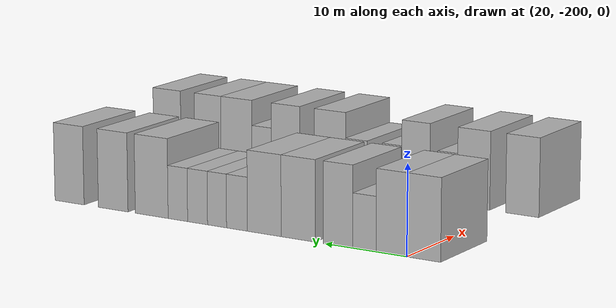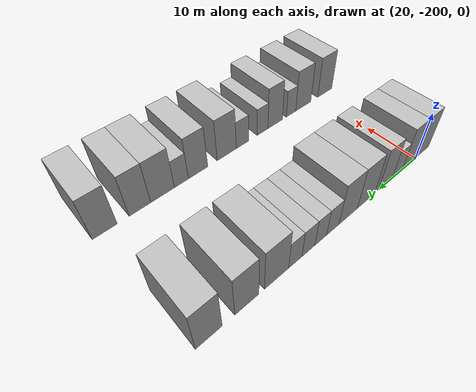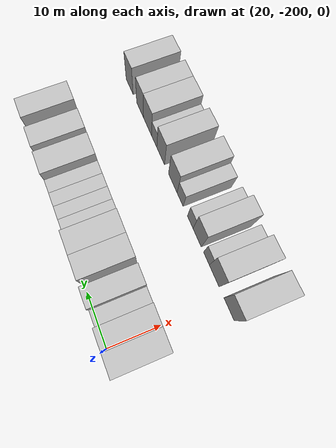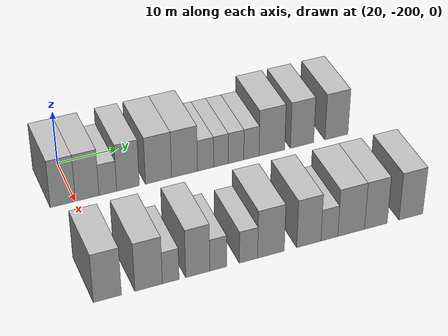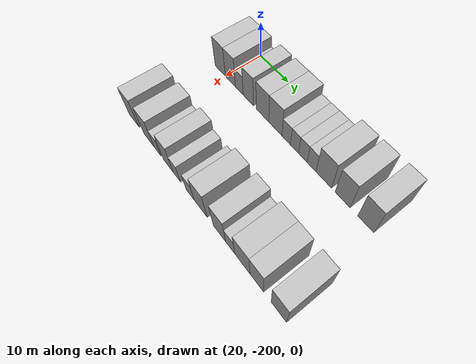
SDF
<sdf version="1.6">
 <world name="default">
  <model name="building_1">
   <static>1</static>
   <pose>25.0000 -202.0031 0 0.000000 0.000000 0.000000</pose>
   <link name="link">
    <pose>0 0 4.50 0 0 0</pose>
    <collision name="collision"><geometry><box><size>10.0000 3.9939 9.0000</size></box></geometry></collision>
    <visual name="visual">
     <cast_shadows>0</cast_shadows>
     <geometry><box><size>10.0000 3.9939 9.0000</size></box></geometry>
     <material>
      <script>
       <uri>model://HANNAS_wall/materials/scripts</uri>
       <uri>model://HANNAS_wall/materials/textures</uri>
       <name>vrc/HANNAS_wall</name>
      </script>
     </material>
    </visual>
   </link>
  </model>
  <model name="building_2">
   <static>1</static>
   <pose>25.0000 -198.1215 0 0.000000 0.000000 0.000000</pose>
   <link name="link">
    <pose>0 0 4.50 0 0 0</pose>
    <collision name="collision"><geometry><box><size>10.0000 3.7692 9.0000</size></box></geometry></collision>
    <visual name="visual">
     <cast_shadows>0</cast_shadows>
     <geometry><box><size>10.0000 3.7692 9.0000</size></box></geometry>
     <material>
      <script>
       <uri>model://HANNAS_wall/materials/scripts</uri>
       <uri>model://HANNAS_wall/materials/textures</uri>
       <name>vrc/HANNAS_wall</name>
      </script>
     </material>
    </visual>
   </link>
  </model>
  <model name="building_3">
   <static>1</static>
   <pose>25.0000 -194.8044 0 0.000000 0.000000 0.000000</pose>
   <link name="link">
    <pose>0 0 3.00 0 0 0</pose>
    <collision name="collision"><geometry><box><size>10.0000 2.8649 6.0000</size></box></geometry></collision>
    <visual name="visual">
     <cast_shadows>0</cast_shadows>
     <geometry><box><size>10.0000 2.8649 6.0000</size></box></geometry>
     <material>
      <script>
       <uri>model://HANNAS_wall/materials/scripts</uri>
       <uri>model://HANNAS_wall/materials/textures</uri>
       <name>vrc/HANNAS_wall</name>
      </script>
     </material>
    </visual>
   </link>
  </model>
  <model name="building_4">
   <static>1</static>
   <pose>25.0000 -191.5345 0 0.000000 0.000000 0.000000</pose>
   <link name="link">
    <pose>0 0 4.50 0 0 0</pose>
    <collision name="collision"><geometry><box><size>10.0000 3.6749 9.0000</size></box></geometry></collision>
    <visual name="visual">
     <cast_shadows>0</cast_shadows>
     <geometry><box><size>10.0000 3.6749 9.0000</size></box></geometry>
     <material>
      <script>
       <uri>model://HANNAS_wall/materials/scripts</uri>
       <uri>model://HANNAS_wall/materials/textures</uri>
       <name>vrc/HANNAS_wall</name>
      </script>
     </material>
    </visual>
   </link>
  </model>
  <model name="building_5">
   <static>1</static>
   <pose>25.0000 -186.5516 0 0.000000 0.000000 0.000000</pose>
   <link name="link">
    <pose>0 0 4.50 0 0 0</pose>
    <collision name="collision"><geometry><box><size>10.0000 4.2910 9.0000</size></box></geometry></collision>
    <visual name="visual">
     <cast_shadows>0</cast_shadows>
     <geometry><box><size>10.0000 4.2910 9.0000</size></box></geometry>
     <material>
      <script>
       <uri>model://HANNAS_wall/materials/scripts</uri>
       <uri>model://HANNAS_wall/materials/textures</uri>
       <name>vrc/HANNAS_wall</name>
      </script>
     </material>
    </visual>
   </link>
  </model>
  <model name="building_6">
   <static>1</static>
   <pose>25.0000 -182.2381 0 0.000000 0.000000 0.000000</pose>
   <link name="link">
    <pose>0 0 4.50 0 0 0</pose>
    <collision name="collision"><geometry><box><size>10.0000 4.3360 9.0000</size></box></geometry></collision>
    <visual name="visual">
     <cast_shadows>0</cast_shadows>
     <geometry><box><size>10.0000 4.3360 9.0000</size></box></geometry>
     <material>
      <script>
       <uri>model://HANNAS_wall/materials/scripts</uri>
       <uri>model://HANNAS_wall/materials/textures</uri>
       <name>vrc/HANNAS_wall</name>
      </script>
     </material>
    </visual>
   </link>
  </model>
  <model name="building_7">
   <static>1</static>
   <pose>25.0000 -178.7124 0 0.000000 0.000000 0.000000</pose>
   <link name="link">
    <pose>0 0 3.00 0 0 0</pose>
    <collision name="collision"><geometry><box><size>10.0000 2.7153 6.0000</size></box></geometry></collision>
    <visual name="visual">
     <cast_shadows>0</cast_shadows>
     <geometry><box><size>10.0000 2.7153 6.0000</size></box></geometry>
     <material>
      <script>
       <uri>model://HANNAS_wall/materials/scripts</uri>
       <uri>model://HANNAS_wall/materials/textures</uri>
       <name>vrc/HANNAS_wall</name>
      </script>
     </material>
    </visual>
   </link>
  </model>
  <model name="building_8">
   <static>1</static>
   <pose>25.0000 -176.1058 0 0.000000 0.000000 0.000000</pose>
   <link name="link">
    <pose>0 0 3.00 0 0 0</pose>
    <collision name="collision"><geometry><box><size>10.0000 2.4980 6.0000</size></box></geometry></collision>
    <visual name="visual">
     <cast_shadows>0</cast_shadows>
     <geometry><box><size>10.0000 2.4980 6.0000</size></box></geometry>
     <material>
      <script>
       <uri>model://HANNAS_wall/materials/scripts</uri>
       <uri>model://HANNAS_wall/materials/textures</uri>
       <name>vrc/HANNAS_wall</name>
      </script>
     </material>
    </visual>
   </link>
  </model>
  <model name="building_9">
   <static>1</static>
   <pose>25.0000 -173.5377 0 0.000000 0.000000 0.000000</pose>
   <link name="link">
    <pose>0 0 3.00 0 0 0</pose>
    <collision name="collision"><geometry><box><size>10.0000 2.6382 6.0000</size></box></geometry></collision>
    <visual name="visual">
     <cast_shadows>0</cast_shadows>
     <geometry><box><size>10.0000 2.6382 6.0000</size></box></geometry>
     <material>
      <script>
       <uri>model://HANNAS_wall/materials/scripts</uri>
       <uri>model://HANNAS_wall/materials/textures</uri>
       <name>vrc/HANNAS_wall</name>
      </script>
     </material>
    </visual>
   </link>
  </model>
  <model name="building_10">
   <static>1</static>
   <pose>25.0000 -170.9153 0 0.000000 0.000000 0.000000</pose>
   <link name="link">
    <pose>0 0 3.00 0 0 0</pose>
    <collision name="collision"><geometry><box><size>10.0000 2.6066 6.0000</size></box></geometry></collision>
    <visual name="visual">
     <cast_shadows>0</cast_shadows>
     <geometry><box><size>10.0000 2.6066 6.0000</size></box></geometry>
     <material>
      <script>
       <uri>model://HANNAS_wall/materials/scripts</uri>
       <uri>model://HANNAS_wall/materials/textures</uri>
       <name>vrc/HANNAS_wall</name>
      </script>
     </material>
    </visual>
   </link>
  </model>
  <model name="building_11">
   <static>1</static>
   <pose>25.0000 -167.3863 0 0.000000 0.000000 0.000000</pose>
   <link name="link">
    <pose>0 0 4.50 0 0 0</pose>
    <collision name="collision"><geometry><box><size>10.0000 4.4516 9.0000</size></box></geometry></collision>
    <visual name="visual">
     <cast_shadows>0</cast_shadows>
     <geometry><box><size>10.0000 4.4516 9.0000</size></box></geometry>
     <material>
      <script>
       <uri>model://HANNAS_wall/materials/scripts</uri>
       <uri>model://HANNAS_wall/materials/textures</uri>
       <name>vrc/HANNAS_wall</name>
      </script>
     </material>
    </visual>
   </link>
  </model>
  <model name="building_12">
   <static>1</static>
   <pose>25.0000 -162.1167 0 0.000000 0.000000 0.000000</pose>
   <link name="link">
    <pose>0 0 4.50 0 0 0</pose>
    <collision name="collision"><geometry><box><size>10.0000 4.0875 9.0000</size></box></geometry></collision>
    <visual name="visual">
     <cast_shadows>0</cast_shadows>
     <geometry><box><size>10.0000 4.0875 9.0000</size></box></geometry>
     <material>
      <script>
       <uri>model://HANNAS_wall/materials/scripts</uri>
       <uri>model://HANNAS_wall/materials/textures</uri>
       <name>vrc/HANNAS_wall</name>
      </script>
     </material>
    </visual>
   </link>
  </model>
  <model name="building_13">
   <static>1</static>
   <pose>25.0000 -156.0221 0 0.000000 0.000000 0.000000</pose>
   <link name="link">
    <pose>0 0 4.50 0 0 0</pose>
    <collision name="collision"><geometry><box><size>10.0000 4.1019 9.0000</size></box></geometry></collision>
    <visual name="visual">
     <cast_shadows>0</cast_shadows>
     <geometry><box><size>10.0000 4.1019 9.0000</size></box></geometry>
     <material>
      <script>
       <uri>model://HANNAS_wall/materials/scripts</uri>
       <uri>model://HANNAS_wall/materials/textures</uri>
       <name>vrc/HANNAS_wall</name>
      </script>
     </material>
    </visual>
   </link>
  </model>
  <model name="building_98">
   <static>1</static>
   <pose>47.0000 -201.9204 0 0.000000 0.000000 0.000000</pose>
   <link name="link">
    <pose>0 0 4.50 0 0 0</pose>
    <collision name="collision"><geometry><box><size>10.0000 4.1591 9.0000</size></box></geometry></collision>
    <visual name="visual">
     <cast_shadows>0</cast_shadows>
     <geometry><box><size>10.0000 4.1591 9.0000</size></box></geometry>
     <material>
      <script>
       <uri>model://HANNAS_wall/materials/scripts</uri>
       <uri>model://HANNAS_wall/materials/textures</uri>
       <name>vrc/HANNAS_wall</name>
      </script>
     </material>
    </visual>
   </link>
  </model>
  <model name="building_99">
   <static>1</static>
   <pose>47.0000 -195.7746 0 0.000000 0.000000 0.000000</pose>
   <link name="link">
    <pose>0 0 4.50 0 0 0</pose>
    <collision name="collision"><geometry><box><size>10.0000 4.1327 9.0000</size></box></geometry></collision>
    <visual name="visual">
     <cast_shadows>0</cast_shadows>
     <geometry><box><size>10.0000 4.1327 9.0000</size></box></geometry>
     <material>
      <script>
       <uri>model://HANNAS_wall/materials/scripts</uri>
       <uri>model://HANNAS_wall/materials/textures</uri>
       <name>vrc/HANNAS_wall</name>
      </script>
     </material>
    </visual>
   </link>
  </model>
  <model name="building_100">
   <static>1</static>
   <pose>47.0000 -192.4373 0 0.000000 0.000000 0.000000</pose>
   <link name="link">
    <pose>0 0 3.00 0 0 0</pose>
    <collision name="collision"><geometry><box><size>10.0000 2.5418 6.0000</size></box></geometry></collision>
    <visual name="visual">
     <cast_shadows>0</cast_shadows>
     <geometry><box><size>10.0000 2.5418 6.0000</size></box></geometry>
     <material>
      <script>
       <uri>model://HANNAS_wall/materials/scripts</uri>
       <uri>model://HANNAS_wall/materials/textures</uri>
       <name>vrc/HANNAS_wall</name>
      </script>
     </material>
    </visual>
   </link>
  </model>
  <model name="building_101">
   <static>1</static>
   <pose>47.0000 -188.3199 0 0.000000 0.000000 0.000000</pose>
   <link name="link">
    <pose>0 0 4.50 0 0 0</pose>
    <collision name="collision"><geometry><box><size>10.0000 3.6932 9.0000</size></box></geometry></collision>
    <visual name="visual">
     <cast_shadows>0</cast_shadows>
     <geometry><box><size>10.0000 3.6932 9.0000</size></box></geometry>
     <material>
      <script>
       <uri>model://HANNAS_wall/materials/scripts</uri>
       <uri>model://HANNAS_wall/materials/textures</uri>
       <name>vrc/HANNAS_wall</name>
      </script>
     </material>
    </visual>
   </link>
  </model>
  <model name="building_102">
   <static>1</static>
   <pose>47.0000 -185.1766 0 0.000000 0.000000 0.000000</pose>
   <link name="link">
    <pose>0 0 3.00 0 0 0</pose>
    <collision name="collision"><geometry><box><size>10.0000 2.5933 6.0000</size></box></geometry></collision>
    <visual name="visual">
     <cast_shadows>0</cast_shadows>
     <geometry><box><size>10.0000 2.5933 6.0000</size></box></geometry>
     <material>
      <script>
       <uri>model://HANNAS_wall/materials/scripts</uri>
       <uri>model://HANNAS_wall/materials/textures</uri>
       <name>vrc/HANNAS_wall</name>
      </script>
     </material>
    </visual>
   </link>
  </model>
  <model name="building_103">
   <static>1</static>
   <pose>47.0000 -180.4412 0 0.000000 0.000000 0.000000</pose>
   <link name="link">
    <pose>0 0 3.00 0 0 0</pose>
    <collision name="collision"><geometry><box><size>10.0000 2.8775 6.0000</size></box></geometry></collision>
    <visual name="visual">
     <cast_shadows>0</cast_shadows>
     <geometry><box><size>10.0000 2.8775 6.0000</size></box></geometry>
     <material>
      <script>
       <uri>model://HANNAS_wall/materials/scripts</uri>
       <uri>model://HANNAS_wall/materials/textures</uri>
       <name>vrc/HANNAS_wall</name>
      </script>
     </material>
    </visual>
   </link>
  </model>
  <model name="building_104">
   <static>1</static>
   <pose>47.0000 -176.8933 0 0.000000 0.000000 0.000000</pose>
   <link name="link">
    <pose>0 0 4.50 0 0 0</pose>
    <collision name="collision"><geometry><box><size>10.0000 4.2183 9.0000</size></box></geometry></collision>
    <visual name="visual">
     <cast_shadows>0</cast_shadows>
     <geometry><box><size>10.0000 4.2183 9.0000</size></box></geometry>
     <material>
      <script>
       <uri>model://HANNAS_wall/materials/scripts</uri>
       <uri>model://HANNAS_wall/materials/textures</uri>
       <name>vrc/HANNAS_wall</name>
      </script>
     </material>
    </visual>
   </link>
  </model>
  <model name="building_105">
   <static>1</static>
   <pose>47.0000 -170.8302 0 0.000000 0.000000 0.000000</pose>
   <link name="link">
    <pose>0 0 4.50 0 0 0</pose>
    <collision name="collision"><geometry><box><size>10.0000 3.9079 9.0000</size></box></geometry></collision>
    <visual name="visual">
     <cast_shadows>0</cast_shadows>
     <geometry><box><size>10.0000 3.9079 9.0000</size></box></geometry>
     <material>
      <script>
       <uri>model://HANNAS_wall/materials/scripts</uri>
       <uri>model://HANNAS_wall/materials/textures</uri>
       <name>vrc/HANNAS_wall</name>
      </script>
     </material>
    </visual>
   </link>
  </model>
  <model name="building_106">
   <static>1</static>
   <pose>47.0000 -167.5095 0 0.000000 0.000000 0.000000</pose>
   <link name="link">
    <pose>0 0 3.00 0 0 0</pose>
    <collision name="collision"><geometry><box><size>10.0000 2.7335 6.0000</size></box></geometry></collision>
    <visual name="visual">
     <cast_shadows>0</cast_shadows>
     <geometry><box><size>10.0000 2.7335 6.0000</size></box></geometry>
     <material>
      <script>
       <uri>model://HANNAS_wall/materials/scripts</uri>
       <uri>model://HANNAS_wall/materials/textures</uri>
       <name>vrc/HANNAS_wall</name>
      </script>
     </material>
    </visual>
   </link>
  </model>
  <model name="building_107">
   <static>1</static>
   <pose>47.0000 -163.9434 0 0.000000 0.000000 0.000000</pose>
   <link name="link">
    <pose>0 0 4.50 0 0 0</pose>
    <collision name="collision"><geometry><box><size>10.0000 4.3987 9.0000</size></box></geometry></collision>
    <visual name="visual">
     <cast_shadows>0</cast_shadows>
     <geometry><box><size>10.0000 4.3987 9.0000</size></box></geometry>
     <material>
      <script>
       <uri>model://HANNAS_wall/materials/scripts</uri>
       <uri>model://HANNAS_wall/materials/textures</uri>
       <name>vrc/HANNAS_wall</name>
      </script>
     </material>
    </visual>
   </link>
  </model>
  <model name="building_108">
   <static>1</static>
   <pose>47.0000 -159.8574 0 0.000000 0.000000 0.000000</pose>
   <link name="link">
    <pose>0 0 4.50 0 0 0</pose>
    <collision name="collision"><geometry><box><size>10.0000 3.7733 9.0000</size></box></geometry></collision>
    <visual name="visual">
     <cast_shadows>0</cast_shadows>
     <geometry><box><size>10.0000 3.7733 9.0000</size></box></geometry>
     <material>
      <script>
       <uri>model://HANNAS_wall/materials/scripts</uri>
       <uri>model://HANNAS_wall/materials/textures</uri>
       <name>vrc/HANNAS_wall</name>
      </script>
     </material>
    </visual>
   </link>
  </model>
  <model name="building_109">
   <static>1</static>
   <pose>47.0000 -153.9655 0 0.000000 0.000000 0.000000</pose>
   <link name="link">
    <pose>0 0 4.50 0 0 0</pose>
    <collision name="collision"><geometry><box><size>10.0000 4.0104 9.0000</size></box></geometry></collision>
    <visual name="visual">
     <cast_shadows>0</cast_shadows>
     <geometry><box><size>10.0000 4.0104 9.0000</size></box></geometry>
     <material>
      <script>
       <uri>model://HANNAS_wall/materials/scripts</uri>
       <uri>model://HANNAS_wall/materials/textures</uri>
       <name>vrc/HANNAS_wall</name>
      </script>
     </material>
    </visual>
   </link>
  </model>
 </world>
</sdf>
